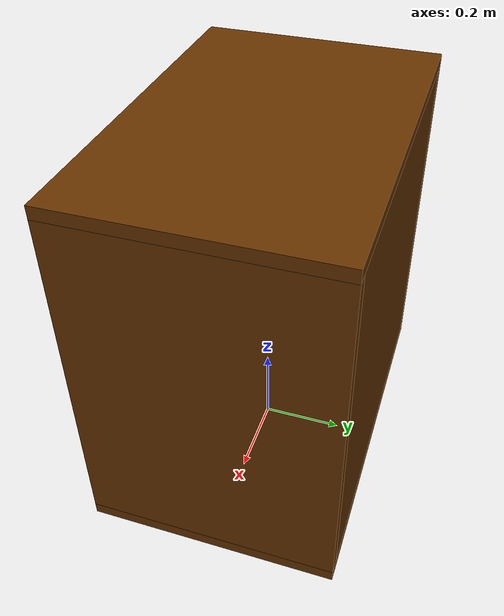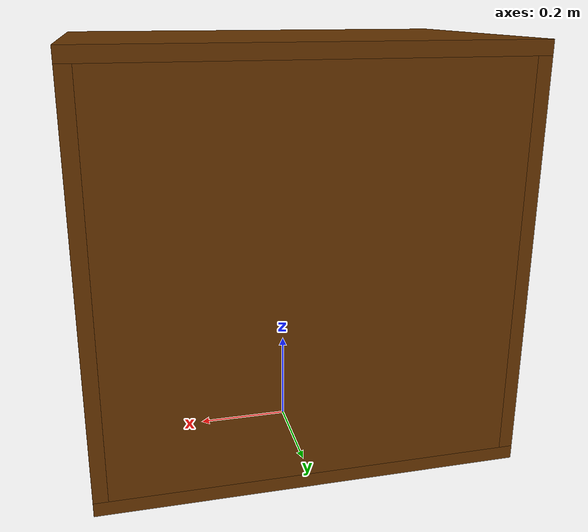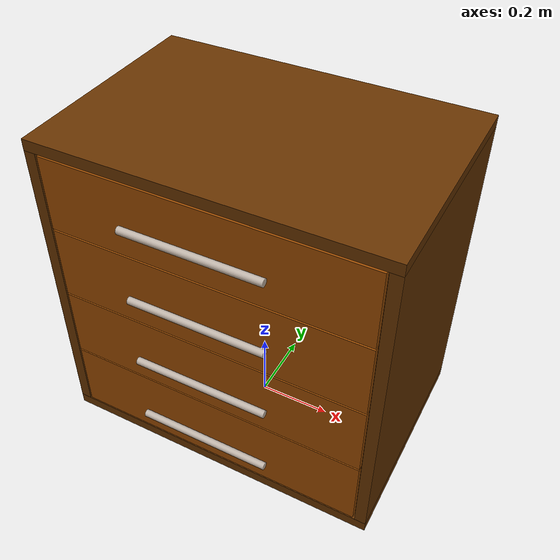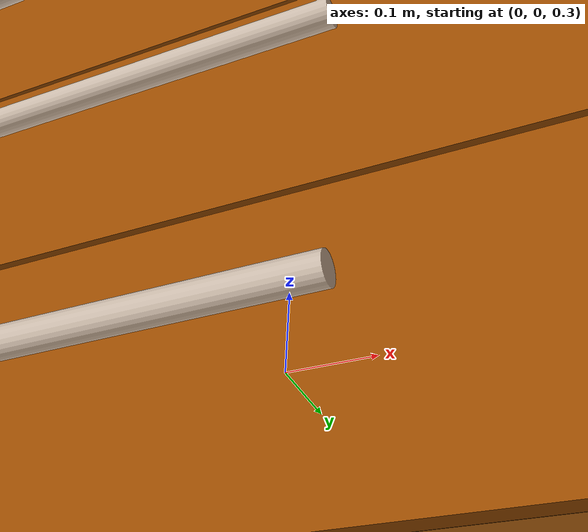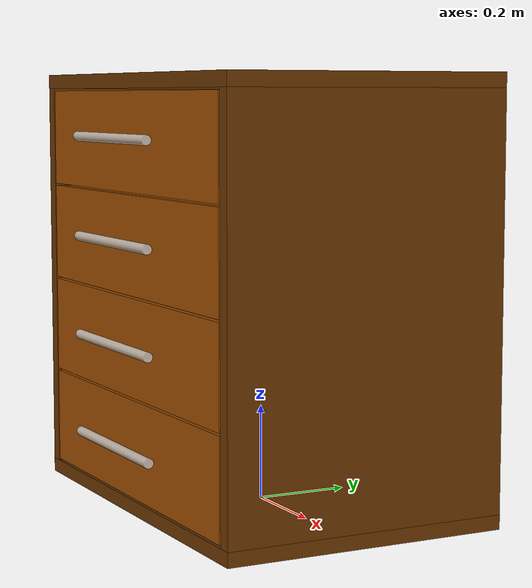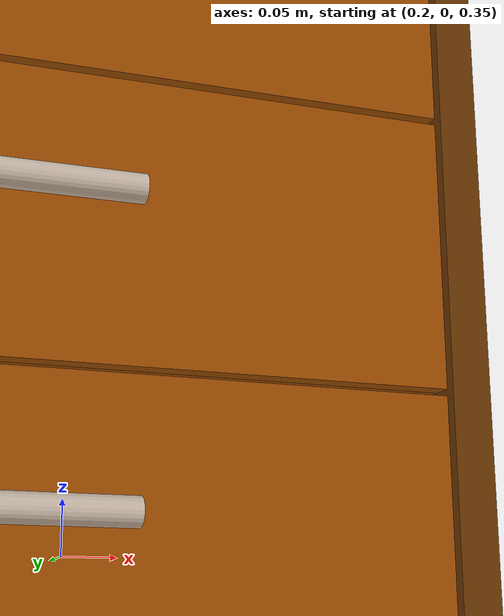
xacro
<?xml version="1.0" ?>
<robot xmlns:xacro="http://www.ros.org/wiki/xacro" name="cupboard_drawers">

<xacro:property name="wall_thickness" value="0.03"/>
<xacro:property name="total_height" value="0.9"/>
<xacro:property name="total_width" value="0.9"/>
<xacro:property name="total_depth" value="0.6"/>
<xacro:property name="num_drawers" value="4"/>
<xacro:property name="drawer_spacing" value="0.005"/>

<material name="white">
  <color rgba="1 1 1 1"/>
</material>
<material name="dark_brown">
  <color rgba="0.4 0.2 0.0 1"/>
</material>
<material name="light_brown">
  <color rgba="0.6 0.29 0.0 1"/>
</material>
<material name="silver">
  <color rgba="0.87 0.87 0.87 0.8"/>
</material>

<xacro:macro name="ori_geo" params="width depth height">
  <origin rpy="0 0 0" xyz="0 0 0"/>
  <geometry>
    <box size="${width} ${depth} ${height}"/>
  </geometry>
</xacro:macro>

<xacro:macro name="wall" params="prefix width height thickness color">
  <link name="${prefix}_wall">
    <contact>
      <lateral_friction value="1.0"/>
    </contact>
    <inertial>
      <origin rpy="0 0 0" xyz="0 0 0"/>
       <mass value="0.2"/>
       <inertia ixx="1" ixy="0" ixz="0" iyy="1" iyz="0" izz="1"/>
    </inertial>
    <visual>
      <xacro:ori_geo width="${width}" depth="${thickness}" height="${height}"/>
      <material name="${color}"/>
    </visual>
    <collision>
      <xacro:ori_geo width="${width}" depth="${thickness}" height="${height}"/>
    </collision>
  </link>
</xacro:macro>

<xacro:macro name="corpus" params="prefix width depth height wall_thickness color">
  <xacro:wall prefix="${prefix}_back" width="${width-2*wall_thickness}" height="${height-2*wall_thickness}" thickness="${wall_thickness}" color="${color}"/>

  <xacro:wall prefix="${prefix}_bottom" width="${width}" height="${depth}" thickness="${wall_thickness}" color="${color}"/>
  <joint name="${prefix}_bottom_joint" type="fixed">
    <origin xyz="0 -${depth/2-wall_thickness/2} -${height/2-wall_thickness/2}" rpy="${pi/2} 0 0"/>
    <parent link="${prefix}_back_wall"/>
    <child link="${prefix}_bottom_wall"/>
  </joint>

  <xacro:wall prefix="${prefix}_left" width="${depth}" height="${height-2*wall_thickness}" thickness="${wall_thickness}" color="${color}"/>
  <joint name="${prefix}_left_joint" type="fixed">
    <origin xyz="-${width/2-wall_thickness/2} -${depth/2-wall_thickness/2} 0" rpy="0 0 ${pi/2}"/>
    <parent link="${prefix}_back_wall"/>
    <child link="${prefix}_left_wall"/>
  </joint>

  <xacro:wall prefix="${prefix}_right" width="${depth}" height="${height-2*wall_thickness}" thickness="${wall_thickness}" color="${color}"/>
  <joint name="${prefix}_right_joint" type="fixed">
    <origin xyz="${width/2-wall_thickness/2} -${depth/2-wall_thickness/2} 0" rpy="0 0 ${pi/2}"/>
    <parent link="${prefix}_back_wall"/>
    <child link="${prefix}_right_wall"/>
  </joint>

  <xacro:wall prefix="${prefix}_top" width="${width}" height="${depth}" thickness="${wall_thickness}" color="${color}"/>
  <joint name="${prefix}_top_joint" type="fixed">
    <origin xyz="0 -${depth/2-wall_thickness/2} ${height/2-wall_thickness/2}" rpy="${pi/2} 0 0"/>
    <parent link="${prefix}_back_wall"/>
    <child link="${prefix}_top_wall"/>
  </joint>
</xacro:macro>

<xacro:macro name="drawer" params="index">
  <xacro:property name="drawer_height" value="${(total_height-2*wall_thickness-(num_drawers+1)*drawer_spacing)/num_drawers}"/>
  <xacro:corpus prefix="drawer${index}"
              width="${total_width-2*(wall_thickness+drawer_spacing)}"
              depth="${drawer_height}"
              height="${total_depth-wall_thickness-drawer_spacing}"
              wall_thickness="${wall_thickness*0.5}"
              color="light_brown"/>
  <joint name="drawer_joint${index}" type="prismatic">
    <origin xyz="0 -${(wall_thickness+drawer_spacing)/2} ${wall_thickness+drawer_spacing+0.5*0.5*wall_thickness + (index-1)*(drawer_height+drawer_spacing)}" rpy="-${pi/2} 0 0"/>
    <parent link="base_link"/>
    <child link="drawer${index}_back_wall"/>
    <axis xyz="0 0 -1"/>
    <dynamics damping="8.0"/>
    <limit lower="0.0" upper="${0.8*total_depth}" effort="10.0" velocity="1.5"/>
  </joint>

  <link name="drawer${index}_handle">
    <inertial>
      <origin rpy="0 0 0" xyz="0 0 0"/>
      <mass value="0.2"/>
      <inertia ixx="1" ixy="0" ixz="0" iyy="1" iyz="0" izz="1"/>
    </inertial>
    <collision>
      <origin rpy="0 0 0" xyz="0 0 0"/>
      <geometry>
        <cylinder radius="0.01" length="${total_width*0.4}"/>
      </geometry>
    </collision>
    <visual>
      <origin rpy="0 0 0" xyz="0 0 0"/>
      <geometry>
        <cylinder radius="0.01" length="${total_width*0.4}"/>
      </geometry>
      <material name="silver"/>
    </visual>
  </link>
  <joint name="drawer${index}_handle_joint" type="fixed">
    <origin xyz="0 ${-drawer_height/2} ${-total_depth/2-0.02}" rpy="0 ${pi/2} 0"/>
    <parent link="drawer${index}_back_wall"/>
    <child link="drawer${index}_handle"/>
  </joint>
  <link name="drawer_handle_dummy_link${index}">
    <!-- This dummy link is added s.t. the handle is the parent of some link and we can find the handle's index. -->
    <inertial>
      <origin rpy="0 0 0" xyz="0 0 0"/>
      <mass value="0.1"/>
      <inertia ixx="1" ixy="0" ixz="0" iyy="1" iyz="0" izz="1"/>
    </inertial>
  </link>
  <joint name="drawer_handle_dummy_joint${index}" type="fixed">
    <origin xyz="0 0 0" rpy="0 0 0"/>
    <parent link="drawer${index}_handle"/>
    <child link="drawer_handle_dummy_link${index}"/>
  </joint>
</xacro:macro>

<link name="base_link">
  <inertial>
    <origin rpy="0 0 0" xyz="0 0 0"/>
    <mass value="0.0"/>
    <inertia ixx="1" ixy="0" ixz="0" iyy="1" iyz="0" izz="1"/>
  </inertial>
</link>

<xacro:corpus prefix="frame" width="${total_width}" depth="${total_depth}" height="${total_height}" wall_thickness="${wall_thickness}" color="dark_brown"/>
<joint name="frame_joint" type="fixed">
  <origin xyz="0 ${total_depth/2-wall_thickness/2} ${total_height/2}" rpy="0 0 0"/>
  <parent link="base_link"/>
  <child link="frame_back_wall"/>
</joint>

<xacro:drawer index="1"/>
<xacro:drawer index="2"/>
<xacro:drawer index="3"/>
<xacro:drawer index="4"/>

</robot>
